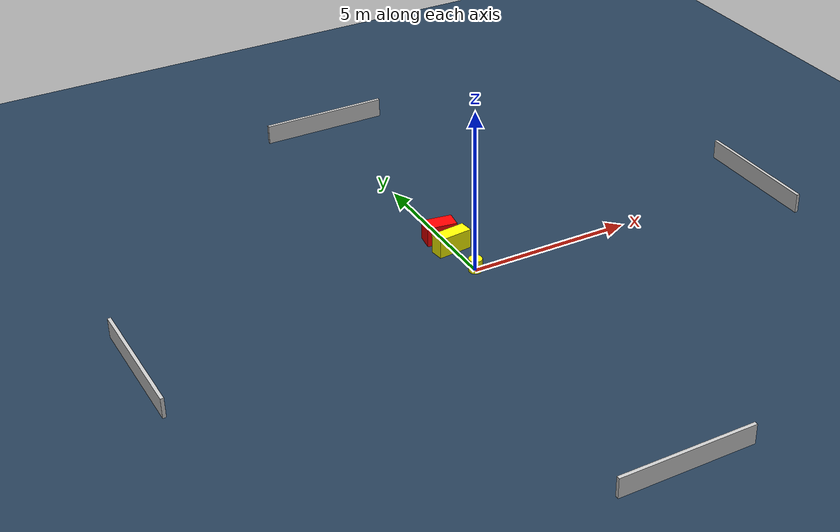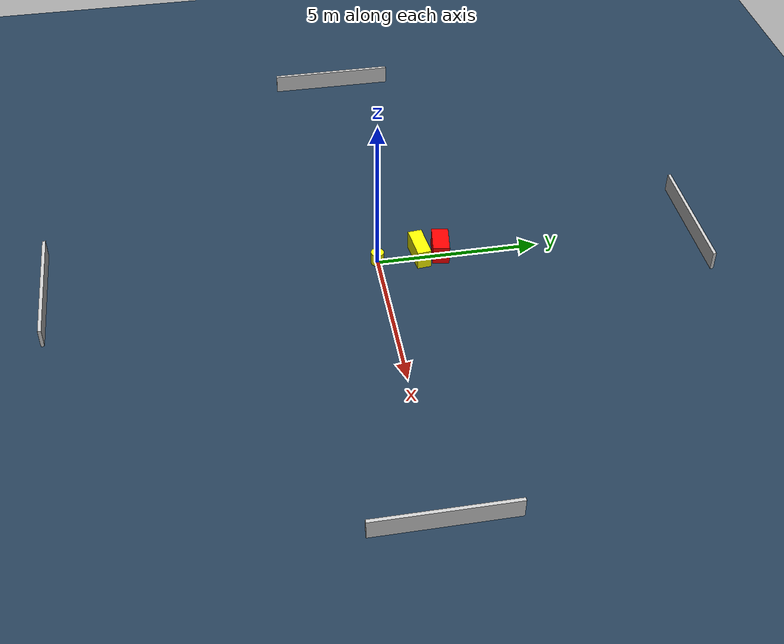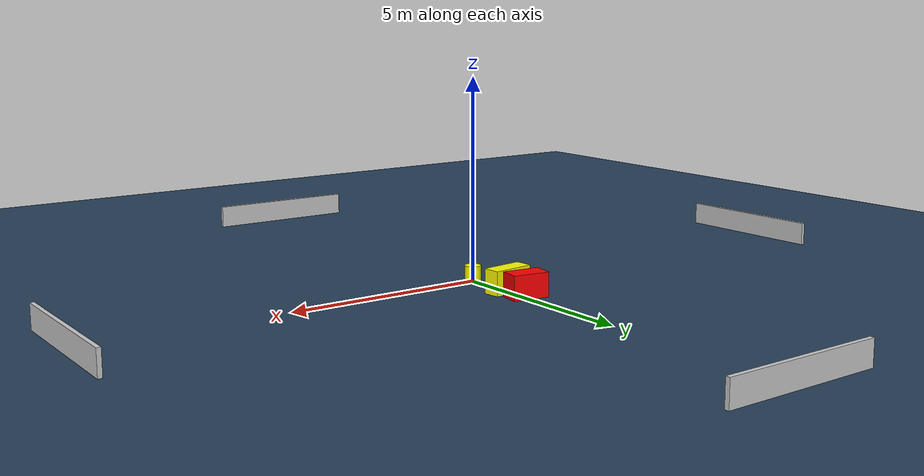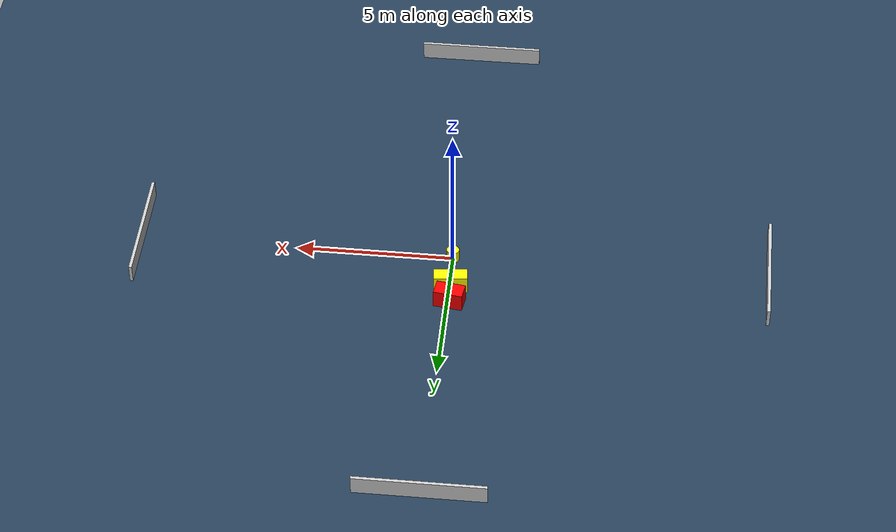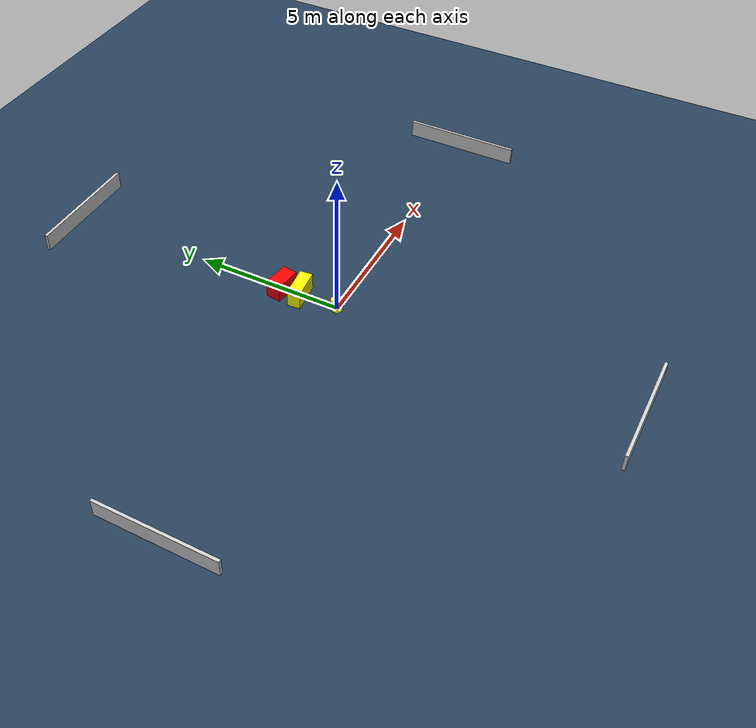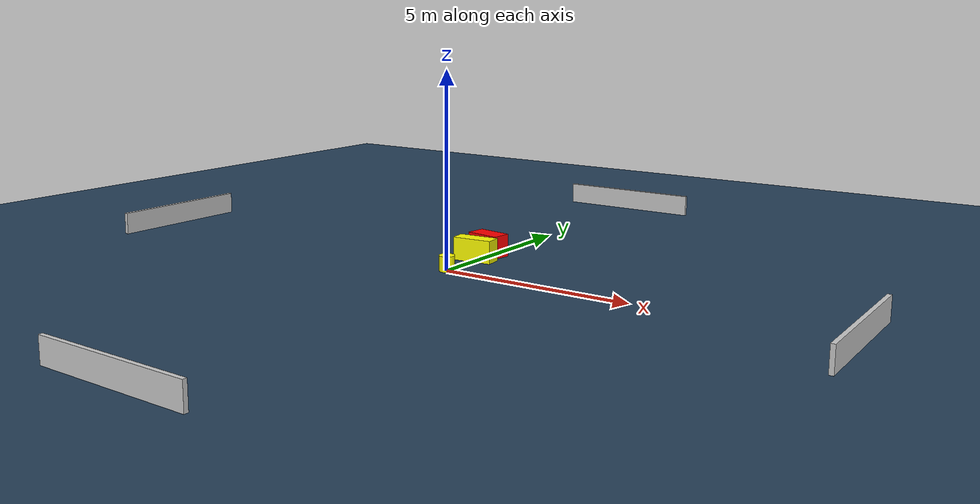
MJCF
<?xml version="1.0" ?>
<mujoco model="generated_environment">
  <option timestep="0.01" integrator="RK4" cone="elliptic"/>
  <default>
    <geom density="1"/>
  </default>
  <asset>
    <texture builtin="gradient" height="3072" name="skybox" rgb1="0.3 0.5 0.7" rgb2="0 0 0" type="skybox" width="512"/>
    <texture builtin="checker" height="300" name="groundplane" rgb1="0.2 0.3 0.4" rgb2="0.1 0.2 0.3" type="2d" width="300"/>
    <material name="groundplane" reflectance="0.2" texrepeat="5 5" texture="groundplane"/>
  </asset>
  <worldbody>
    <light dir="0 0 -1" directional="true" pos="0 0 1.5"/>
    <geom condim="3" friction="0.5 0.005 0.001" material="groundplane" name="floor" pos="0 0 0" size="0 0 0.05" type="plane"/>
    <body name="walls">
      <geom name="wall_1" condim="4" pos="-10.0 0.0 0.3" rgba="0.800000011920929 0.800000011920929 0.800000011920929 1.0" size="0.05 2.0 0.3" type="box"/>
      <geom name="wall_2" condim="4" pos="10.0 0.0 0.3" rgba="0.800000011920929 0.800000011920929 0.800000011920929 1.0" size="0.05 2.0 0.3" type="box"/>
      <geom name="wall_3" condim="4" pos="0.0 -10.0 0.3" rgba="0.800000011920929 0.800000011920929 0.800000011920929 1.0" size="2.0 0.05 0.3" type="box"/>
      <geom name="wall_4" condim="4" pos="0.0 10.0 0.3" rgba="0.800000011920929 0.800000011920929 0.800000011920929 1.0" size="2.0 0.05 0.3" type="box"/>
    </body>
    <body name="robot">
      <joint name="joint_x" type="slide" pos="0 0 0" axis="1 0 0"/>
      <joint name="joint_y" type="slide" pos="0 0 0" axis="0 1 0"/>
      <geom name="robot" type="cylinder" pos="0.0 0.0 0.2" size="0.2 0.2 0.0" mass="5.0" friction="1.0 0.005 0.0001" condim="4" rgba="1.0 1.0 0.0 1.0"/>
    </body>
    <body name="obstacle_1_movable">
      <geom name="obstacle_1_movable" condim="4" pos="-0.04789529392743614 1.314576291186291 0.3" euler="0 0 185.87578495505983" friction="0.0 0.005 0.001" rgba="1.0 1.0 0.0 1.0" size="0.5324578052153301 0.2157817018373892 0.3" type="box" mass="0.1"/>
      <joint type="free"/>
    </body>
    <body name="obstacle_2_static">
      <geom name="obstacle_2_static" condim="4" pos="-0.08025538904871869 1.974923685769264 0.3" euler="0 0 171.63763343214094" friction="0.0 0.005 0.001" rgba="1.0 0.0 0.0 1.0" size="0.4594394307270524 0.25738444834954044 0.3" type="box"/>
    </body>
  </worldbody>
  <actuator>
    <motor name="actuator_x" joint="joint_x" gear="1" ctrlrange="-1 1"/>
    <motor name="actuator_y" joint="joint_y" gear="1" ctrlrange="-1 1"/>
  </actuator>
</mujoco>
